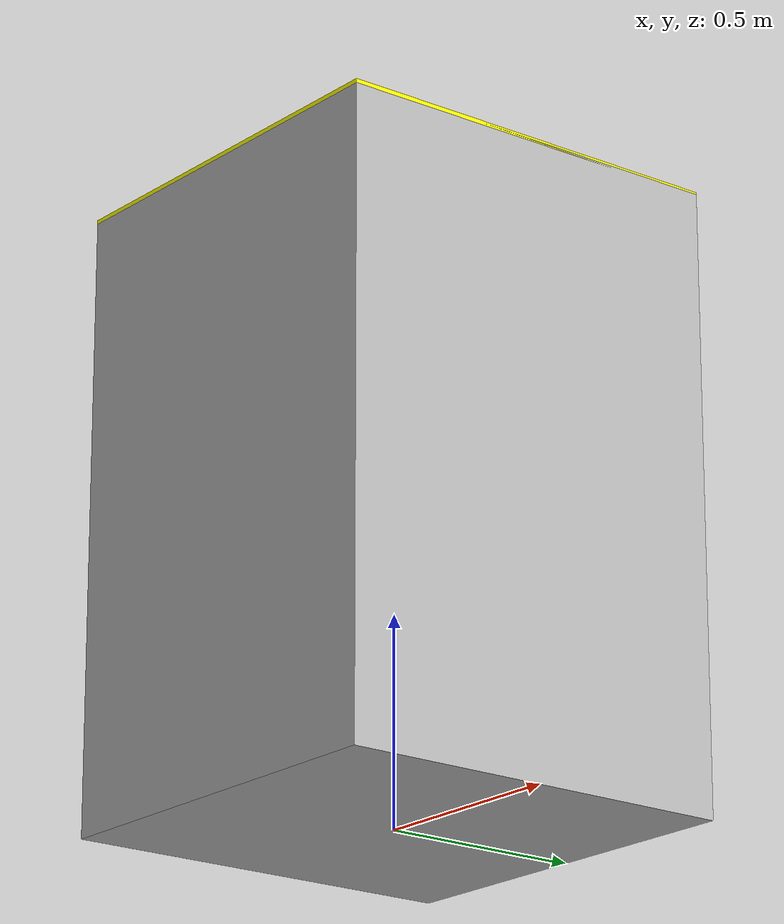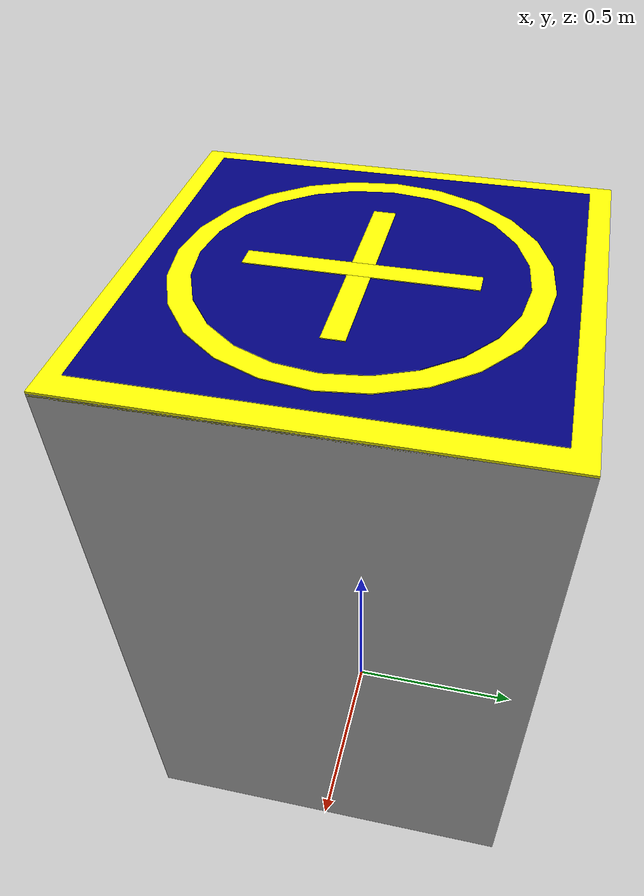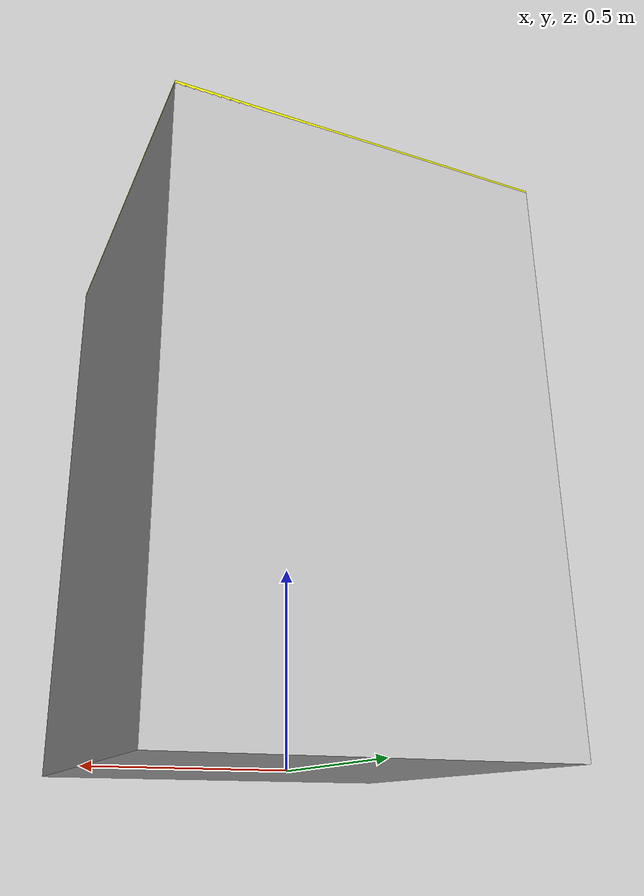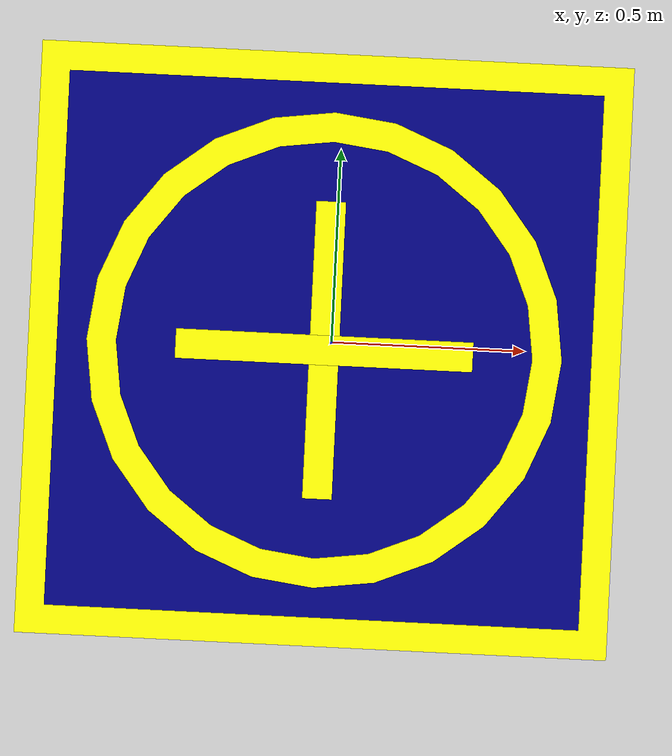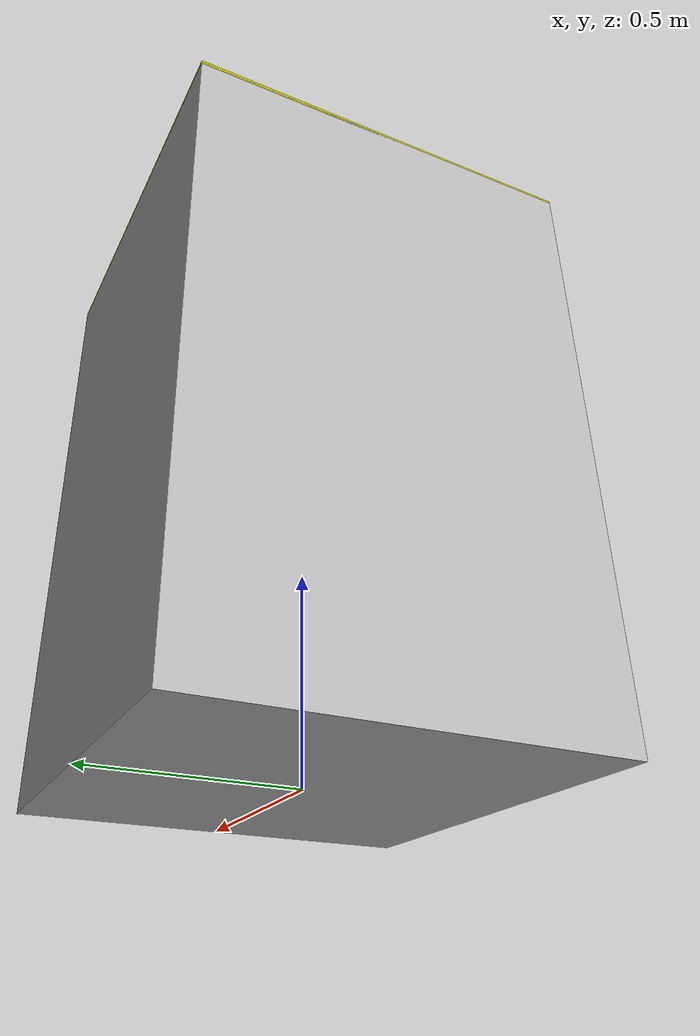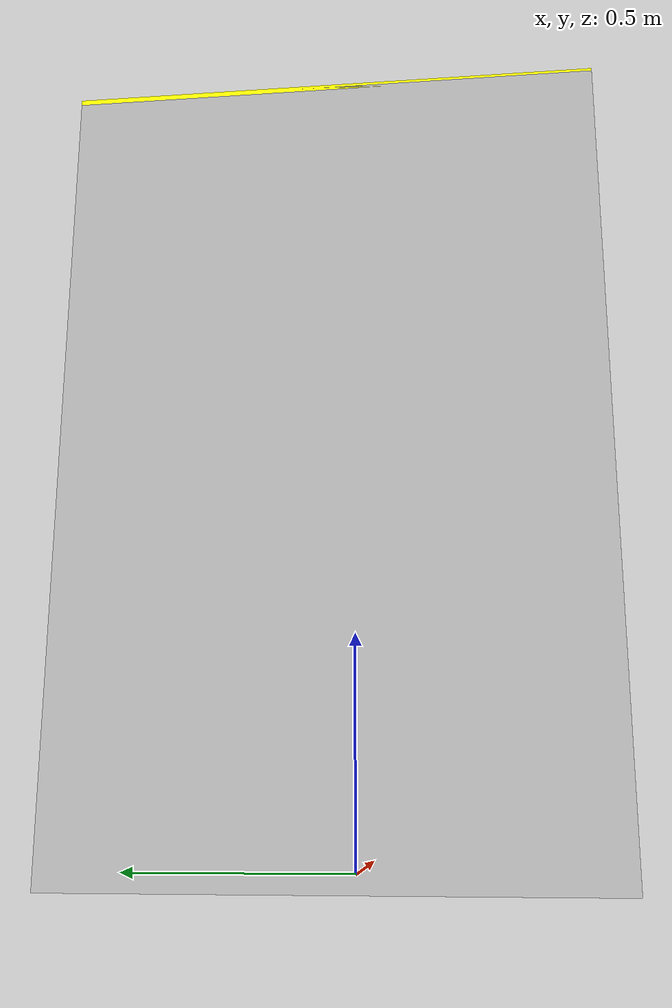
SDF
<?xml version="1.0" ?>
<sdf version="1.6">
  <model name="base_pouso_alt1.5">
    <static>true</static>
    <link name="link_base">
      <collision name="collision">
        <pose>0 0 0.75 0 0 0</pose>
        <geometry>
          <box>
            <size>1 1 1.5</size>
          </box>
        </geometry>
      </collision>

      <!-- Base altura 1.5m -->
      <visual name="base">
        <pose>0 0 0.75 0 0 0</pose>
        <geometry>
          <box><size>1 1 1.5</size></box>
        </geometry>
        <material>
          <ambient>0.7 0.7 0.7 1</ambient>  <!-- Cinza -->
          <diffuse>0.7 0.7 0.7 1</diffuse>
        </material>
      </visual>

      <!-- Plano de 1x1m (contorno) -->
      <visual name="quadrado_amarelo">
        <pose>0 0 1.5 0 0 0</pose>
        <geometry>
          <box><size>1 1 0.01</size></box>
        </geometry>
        <material>
          <ambient>1 1 0 1</ambient>  <!-- Amarelo -->
          <diffuse>1 1 0 1</diffuse>
        </material>
      </visual>

      <!-- Plano de 1x1m (base) -->
      <visual name="quadrado_azul">
        <pose>0 0 1.512 0 0 0</pose>
        <geometry>
          <box><size>0.9 0.9 0.002</size></box>
        </geometry>
        <material>
          <ambient>0 0 0.5 1</ambient>  <!-- Azul escuro -->
          <diffuse>0 0 0.5 1</diffuse>
        </material>
      </visual>

      <!-- Círculo amarelo (externo: 0.8m de diâmetro) -->
      <visual name="circulo_out">
        <pose>0 0 1.514 0 0 0</pose>
        <geometry>
          <cylinder>
            <radius>0.4</radius>
            <length>0.002</length>
          </cylinder>
        </geometry>
        <material>
          <ambient>1 1 0 1</ambient>  <!-- Amarelo -->
          <diffuse>1 1 0 1</diffuse>
        </material>
      </visual>

      <!-- Círculo azul (interno: 0.7m de diâmetro) -->
      <visual name="circulo_in">
        <pose>0 0 1.516 0 0 0</pose>
        <geometry>
          <cylinder>
            <radius>0.35</radius>
            <length>0.002</length>
          </cylinder>
        </geometry>
        <material>
          <ambient>0 0 0.5 1</ambient>  <!-- Azul escuro -->
          <diffuse>0 0 0.5 1</diffuse>
        </material>
      </visual>

      <!-- Linha horizontal da cruz -->
      <visual name="linha_h">
        <pose>0 0 1.518 0 0 0</pose>
        <geometry>
          <box><size>0.5 0.05 0.002</size></box>
        </geometry>
        <material>
          <ambient>1 1 0 1</ambient>
          <diffuse>1 1 0 1</diffuse>
        </material>
      </visual>

      <!-- Linha vertical da cruz -->
      <visual name="linha_v">
        <pose>0 0 1.518 0 0 0</pose>
        <geometry>
          <box><size>0.05 0.5 0.002</size></box>
        </geometry>
        <material>
          <ambient>1 1 0 1</ambient>
          <diffuse>1 1 0 1</diffuse>
        </material>
      </visual>

    </link>
  </model>
</sdf>
